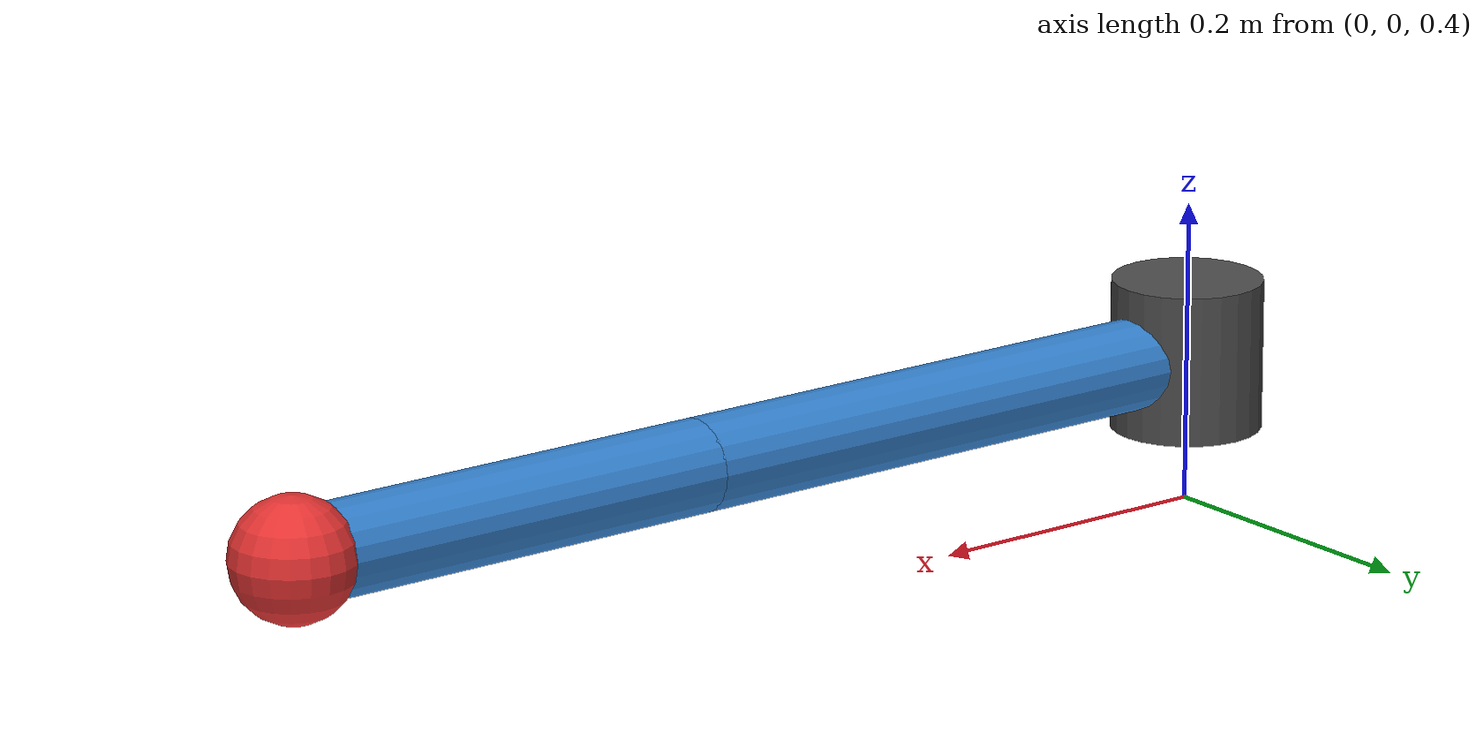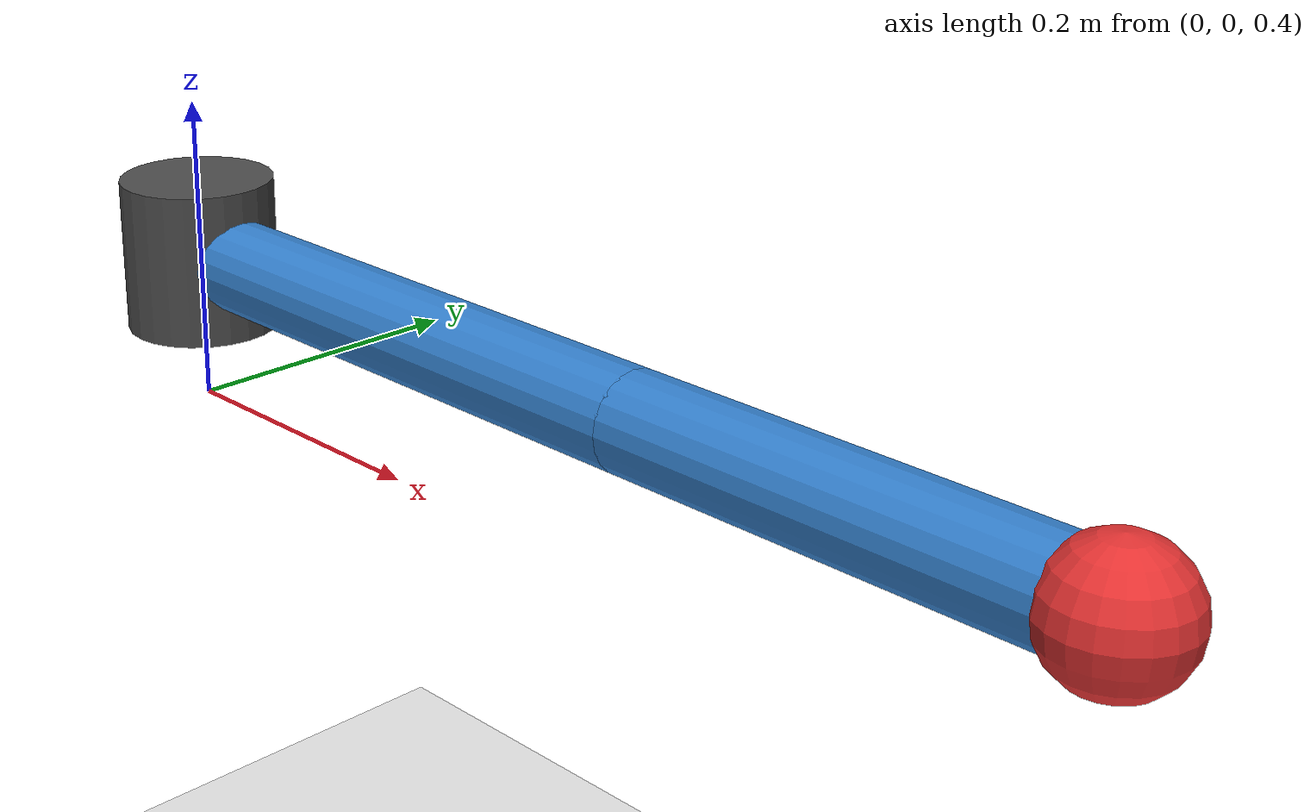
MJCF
<mujoco model="two_link_planar_arm">
  <compiler angle="radian"/>
  <option gravity="0 0 -9.81" timestep="0.002"/>

  <default>
    <joint damping="0.5" armature="0.01"/>
    <geom type="capsule" size="0.03" rgba="0.2 0.5 0.8 1"/>
  </default>

  <contact>
    <exclude body1="base" body2="link1"/>
    <exclude body1="link1" body2="link2"/>
    <exclude body1="link2" body2="end_effector"/>
  </contact>

  <worldbody>
    <light diffuse=".6 .6 .6" pos="0 0 3" dir="0 0 -1"/>
    <geom name="floor" type="plane" size="2 2 0.1" pos="0 0 -0.01" rgba="0.9 0.9 0.9 1"/>

    <!-- Base: fixed pedestal -->
    <body name="base" pos="0 0 0.5">
      <geom name="base_geom" type="cylinder" size="0.05 0.05" rgba="0.3 0.3 0.3 1"/>

      <!-- Link 1: shoulder -->
      <body name="link1" pos="0 0 0">
        <joint name="shoulder" type="hinge" axis="0 1 0" range="-3.14159 3.14159"/>
        <geom name="link1_geom" fromto="0 0 0 0.4 0 0" mass="1.0"/>

        <!-- Link 2: elbow -->
        <body name="link2" pos="0.4 0 0">
          <joint name="elbow" type="hinge" axis="0 1 0" range="-2.8 2.8"/>
          <geom name="link2_geom" fromto="0 0 0 0.3 0 0" mass="0.7"/>

          <!-- End effector marker -->
          <body name="end_effector" pos="0.3 0 0">
            <geom type="sphere" size="0.04" rgba="0.9 0.2 0.2 1" mass="0.05"/>
            <site name="ee_site" pos="0 0 0" size="0.01"/>
          </body>
        </body>
      </body>
    </body>
  </worldbody>

  <actuator>
    <motor name="shoulder_motor" joint="shoulder" gear="1" ctrlrange="-20 20"/>
    <motor name="elbow_motor" joint="elbow" gear="1" ctrlrange="-20 20"/>
  </actuator>
</mujoco>
